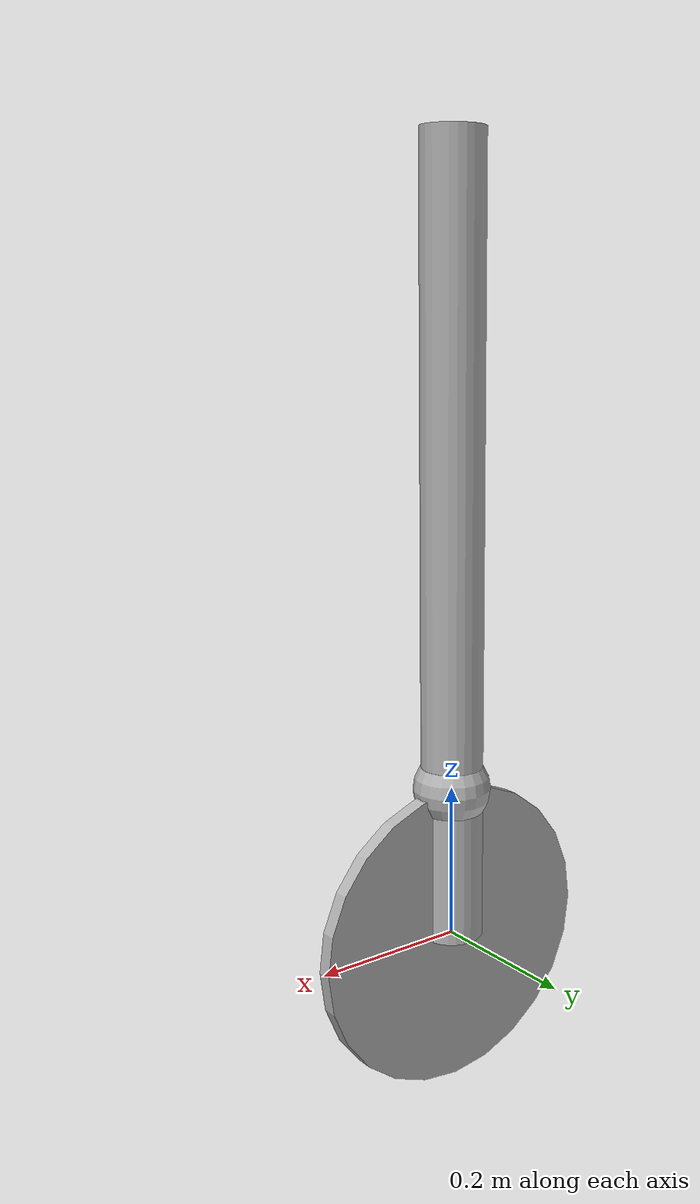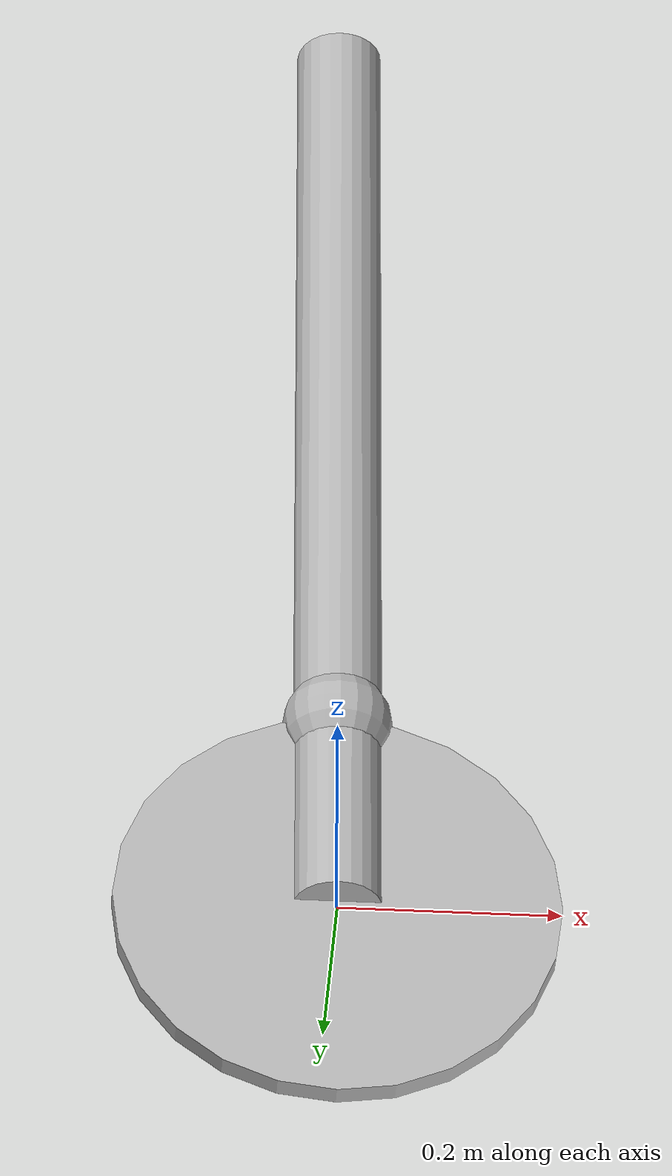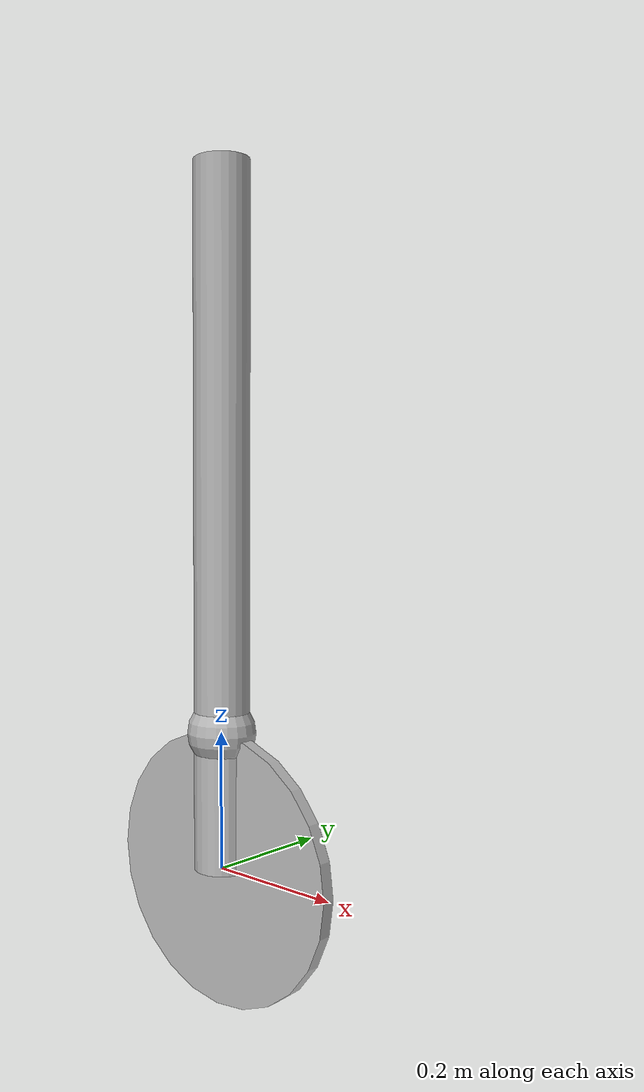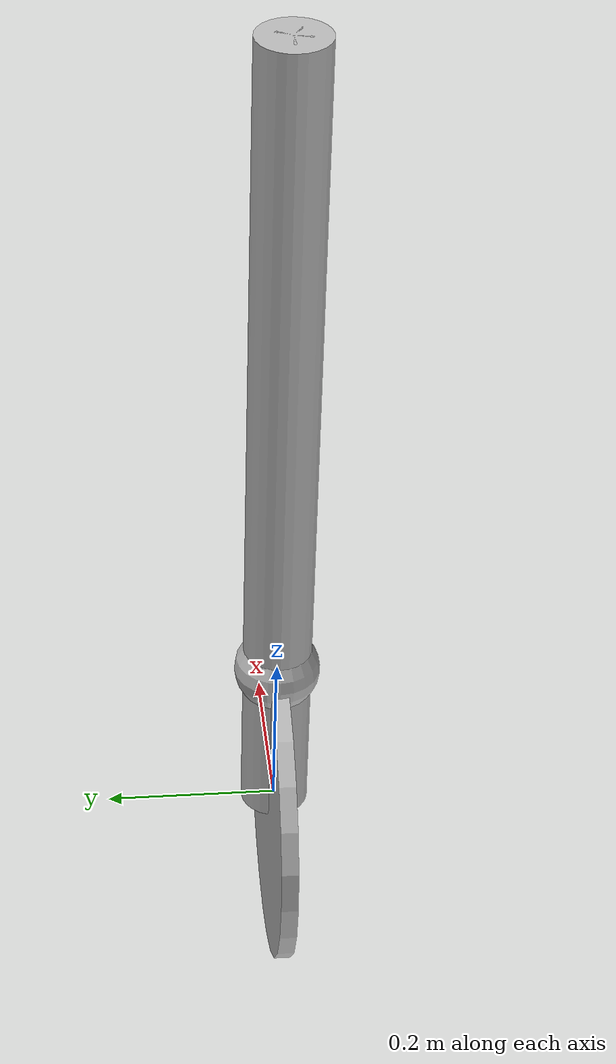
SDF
<?xml version='1.0' ?>

<!-- THIS FILE IS GENERATED FROM unibot.rsdf -->

<sdf version='1.6'>
  <model name='Unibot'>

    <link name='wheel'>
      <pose>0 0 0 0 0 0</pose>
      <inertial>
        <mass>0.2</mass>
        <inertia>
          <ixx>0.002006666666666667</ixx>
          <iyy>0.004000000000000001</iyy>
          <izz>0.002006666666666667</izz>
          <ixy>0</ixy><ixz>0</ixz><iyz>0</iyz>
        </inertia>
      </inertial>

      <visual name='vis_wheel'>
        <pose>0 0 0 1.570795 0 0</pose>
        <geometry>
          <cylinder>
            <radius>0.2</radius>
            <length>0.02</length>
          </cylinder>
        </geometry>
      </visual>
      <collision name='col_wheel'>
        <pose>0 0 0 1.570795 0 0</pose>
        <geometry>
          <cylinder>
            <radius>0.2</radius>
            <length>0.02</length>
          </cylinder>
        </geometry>
      </collision>
    </link>

    <link name='link1'>
      <pose>0 0 0 0 0 0</pose>
      <inertial>
        <mass>0.1</mass>
        <inertia>
          <ixx>0.008333333333333333</ixx>
          <iyy>0.008333333333333333</iyy>
          <izz>1.0e-20</izz>
          <ixy>0</ixy><ixz>0</ixz><iyz>0</iyz>
        </inertia>
      </inertial>
      <visual name='link1_vis'>
        <pose>0 0 0.5 0 0 0</pose>
        <geometry>
          <cylinder>
            <radius>0.04</radius>
            <length>1.0</length>
          </cylinder>
        </geometry>
      </visual>
      <collision name='link1_col'>
        <pose>0 0 0.5 0 0 0</pose>
        <geometry>
          <cylinder>
            <radius>0.04</radius>
            <length>1.0</length>
          </cylinder>
        </geometry>
      </collision>
    </link>

    <link name='link2'>
      <pose>0 0 1.0 0 0 0</pose>
      <inertial>
        <pose>0 0 -0.4 0 0 0</pose>
        <mass>0.08</mass>
        <inertia>
          <ixx>0.004266666666666667</ixx>
          <iyy>0.004266666666666667</iyy>
          <izz>1.0e-20</izz>
          <ixy>0</ixy><ixz>0</ixz><iyz>0</iyz>
        </inertia>
      </inertial>
      <visual name='link2_vis'>
        <pose>0 0 -0.4 0 0 0</pose>
        <geometry>
          <cylinder>
            <radius>0.02</radius>
            <length>0.8</length>
          </cylinder>
        </geometry>
      </visual>
    </link>

    <link name='load'>
      <pose>0 0 0.19999999999999996 0 0 0</pose>
      <inertial>
        <!-- A point mass has zero rotational inertia.
             We must specify small values since otherwise sdformat throws an
             exception. -->
        <inertia>
          <ixx>1.0e-20</ixx><iyy>1.0e-20</iyy><izz>1.0e-20</izz>
          <ixy>0</ixy><ixz>0</ixz><iyz>0</iyz>
        </inertia>
        <mass>0.5</mass>
      </inertial>
      <visual name='load_vis'>
        <pose>0 0 0 0 0 0</pose>
        <geometry>
          <sphere>
            <radius>0.05</radius>
          </sphere>
        </geometry>
      </visual>
    </link>

    <joint name='alpha' type='revolute'>
      <parent>link1</parent>
      <child>link2</child>
      <pose>0 0 0 0 0 0</pose>
      <axis>
        <xyz>1.0 0 0</xyz>
      </axis>
    </joint>

    <joint name='load_attach' type='fixed'>
      <parent>link2</parent>
      <child>load</child>
      <pose>0 0 0 0 0 0</pose>
    </joint>

    <joint name='beta' type='revolute'>
      <!--With respect to child frame-->
      <pose>0 0 0 0 0 0</pose>
      <parent>link1</parent>
      <child>wheel</child>
      <axis>
        <xyz>0 1.0 0</xyz>
      </axis>
    </joint>

  </model>
</sdf>
